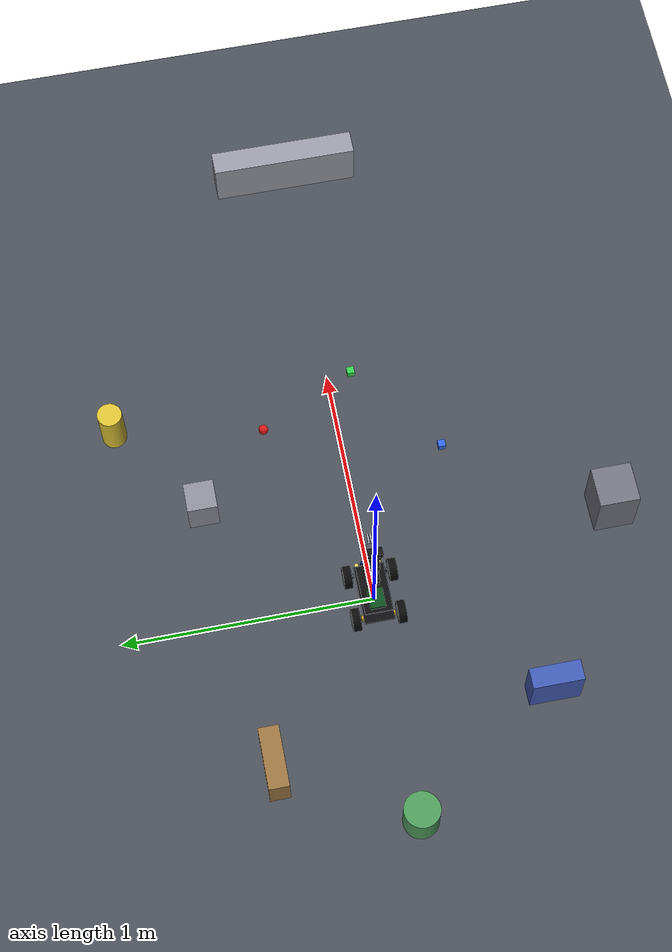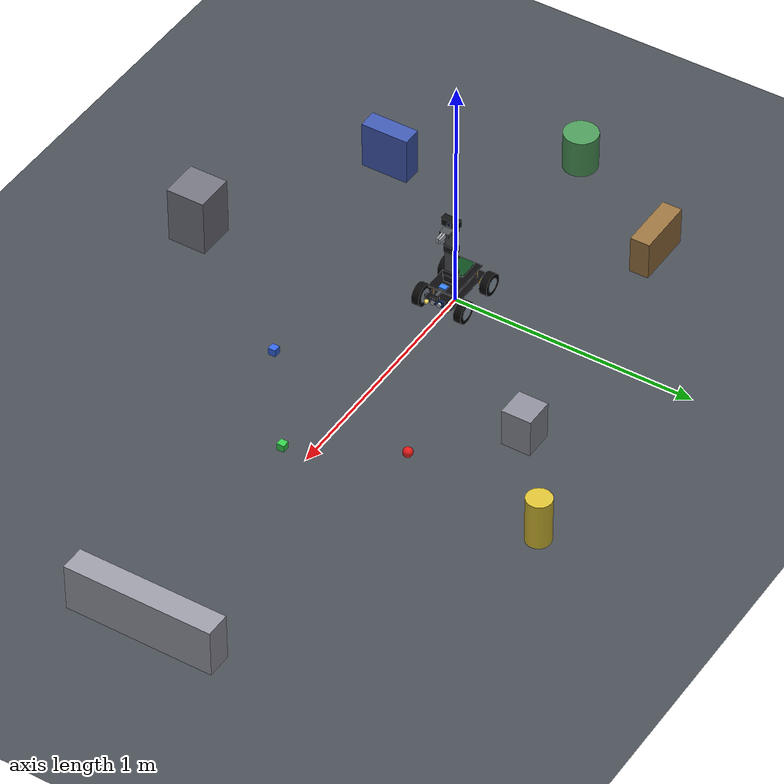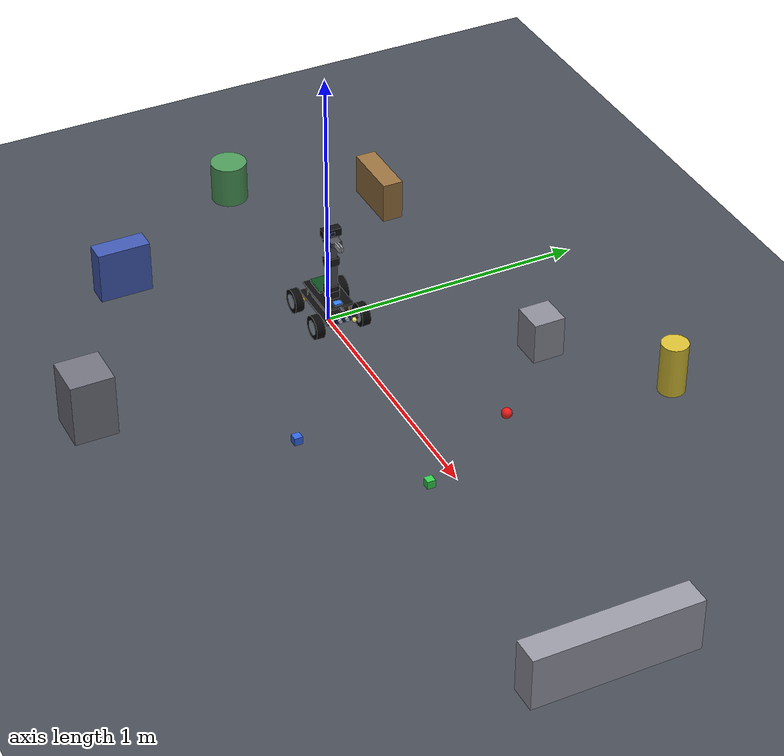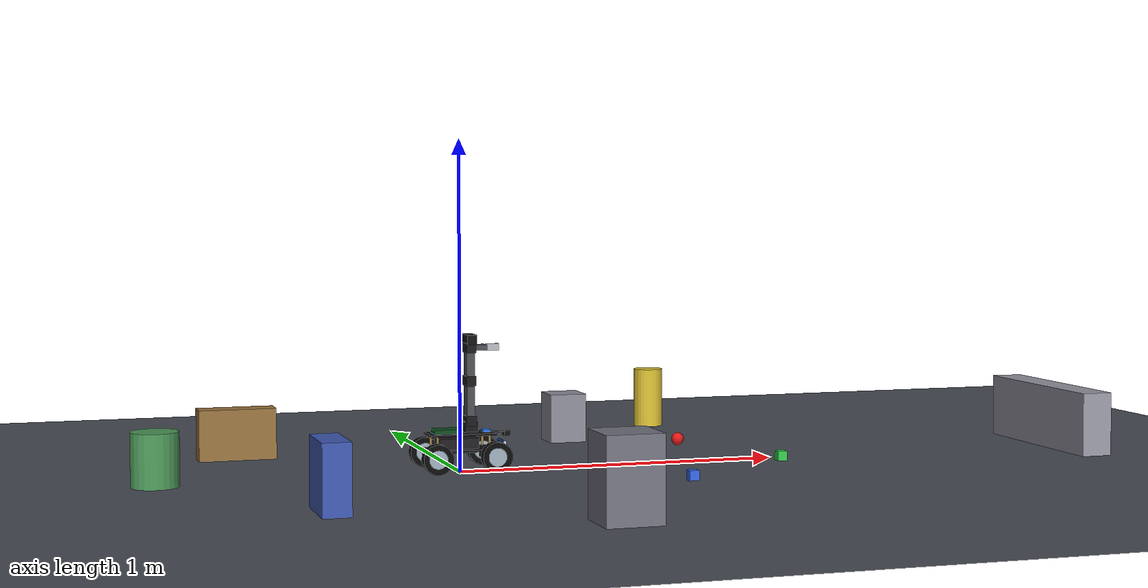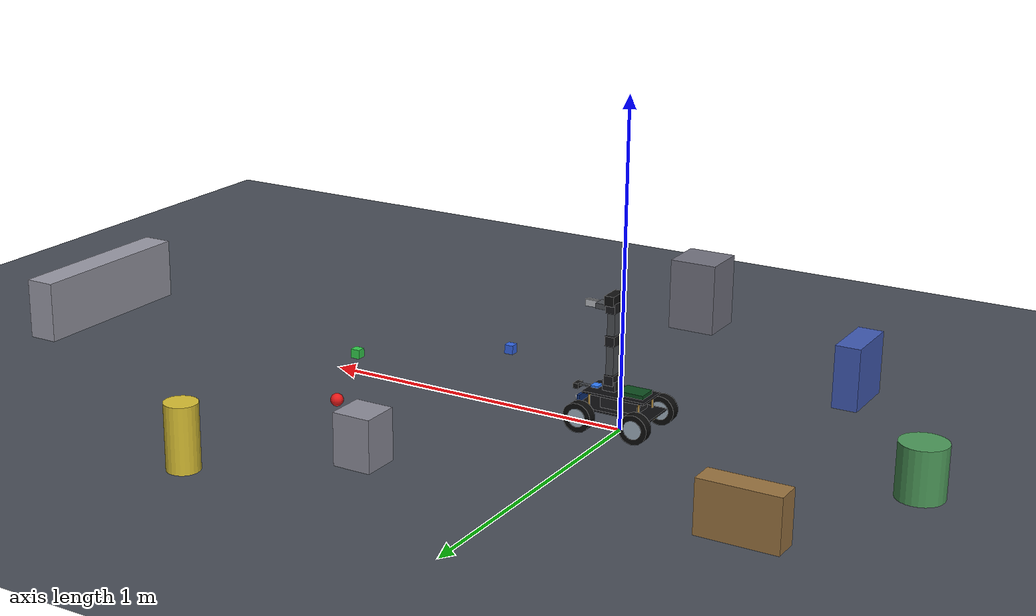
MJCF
<mujoco model="picar_pro">
  <!-- angle="radian": all angles (range, ctrlrange) are in radians. MJCF defaults to degrees! -->
  <compiler angle="radian"/>

  <option timestep="0.002" integrator="implicitfast" cone="elliptic" impratio="10" noslip_iterations="5"/>

  <!-- statistic: where the viewer's free camera looks.
       center = robot center, extent = scene "size" (smaller = camera starts closer) -->
  <statistic center="0 0 0.12" extent="0.35"/>

  <visual>
    <!-- global: initial camera angle (degrees) -->
    <global azimuth="150" elevation="-20"/>
    <!-- znear: lets the camera get very close without clipping (relative to extent) -->
    <map znear="0.005"/>
    <!-- headlight: light attached to the viewer camera. Higher ambient keeps shaded parts visible -->
    <headlight ambient="0.35 0.35 0.35" diffuse="0.6 0.6 0.6" specular="0.1 0.1 0.1"/>
  </visual>

  <asset>
    <texture name="sky" type="skybox" builtin="gradient" rgb1="0.4 0.6 0.8" rgb2="0.05 0.05 0.1" width="512" height="512"/>
    <texture name="grid" type="2d" builtin="checker" rgb1="0.25 0.27 0.3" rgb2="0.32 0.34 0.38" width="512" height="512"/>
    <material name="floor_mat" texture="grid" texrepeat="8 8" reflectance="0.1"/>
    <!-- emission: looks self-illuminated (headlights, screen) -->
    <material name="headlight_mat" rgba="1 0.9 0.4 1" emission="1"/>
    <material name="oled_mat" rgba="0.2 0.5 1 1" emission="0.6"/>
    <!-- Robot materials. specular = highlight strength, shininess = how sharp the highlight is.
         Black parts use different darkness and gloss so they stay distinguishable. -->
    <material name="acrylic" rgba="0.05 0.05 0.06 1" specular="0.8" shininess="0.9"/>        <!-- glossy black acrylic plate -->
    <material name="aluminum" rgba="0.3 0.31 0.33 1" specular="0.6" shininess="0.5"/>        <!-- dark gray metal (arm) -->
    <material name="servo" rgba="0.1 0.1 0.11 1" specular="0.2" shininess="0.2"/>          <!-- matte black servo -->
    <material name="plastic_black" rgba="0.07 0.07 0.07 1" specular="0.3" shininess="0.3"/>  <!-- camera housing -->
    <material name="rubber" rgba="0.04 0.04 0.04 1" specular="0" shininess="0"/>          <!-- rubber tire -->
    <material name="hub_metal" rgba="0.62 0.68 0.74 1" specular="0.7" shininess="0.6"/>     <!-- wheel hub -->
    <material name="steel" rgba="0.72 0.73 0.75 1" specular="0.9" shininess="0.8"/>        <!-- steel: fingers, sonar -->
    <material name="brass" rgba="0.7 0.55 0.25 1" specular="0.8" shininess="0.7"/>         <!-- brass standoffs -->
    <material name="pcb_green" rgba="0.05 0.3 0.12 1" specular="0.4" shininess="0.5"/>     <!-- Raspberry Pi board -->
    <material name="pcb_blue" rgba="0.05 0.18 0.45 1" specular="0.4" shininess="0.5"/>     <!-- sonar board -->
    <material name="battery" rgba="0.12 0.12 0.13 1" specular="0.1" shininess="0.1"/>       <!-- battery holder -->
    <material name="tt_motor" rgba="0.85 0.68 0.1 1" specular="0.3" shininess="0.3"/>      <!-- yellow TT motor -->
    <material name="lens" rgba="0.05 0.08 0.2 1" specular="1" shininess="1"/>             <!-- camera lens -->
  </asset>

  <!-- default: write shared properties once and reuse them through "class" -->
  <default>
    <!-- visual: appearance only. Collides with nothing (contype/conaffinity=0), weightless (density=0) -->
    <default class="visual">
      <geom contype="0" conaffinity="0" density="0"/>
    </default>
    <!-- wheel: tire. zaxis="0 1 0" turns the cylinder axis toward y -->
    <default class="wheel">
      <geom type="cylinder" size="0.045 0.016" zaxis="0 1 0" material="rubber"
            friction="1.5 0.005 0.0001" mass="0.05"/>
    </default>
    <!-- hub: metal wheel disc (visual only) -->
    <default class="hub">
      <geom type="cylinder" size="0.028 0.0165" zaxis="0 1 0" material="hub_metal"
            contype="0" conaffinity="0" density="0"/>
    </default>
    <!-- arm_link: arm segments (dark aluminum) -->
    <default class="arm_link">
      <geom type="box" material="aluminum" contype="0" conaffinity="0" mass="0.03"/>
      <joint type="hinge" armature="0.01" damping="0.2"/>
    </default>
  </default>

  <worldbody>
    <light pos="0 0 3" dir="0 0 -1" diffuse="0.8 0.8 0.8"/>
    <light pos="1 1 1.5" dir="-1 -1 -1" diffuse="0.4 0.4 0.4" castshadow="false"/>
    <geom name="floor" type="plane" size="3 3 0.1" material="floor_mat"/>

    <!-- ===================== ROBOT ===================== -->
    <!-- z=0.07: wheel radius 0.045 + wheels sit 0.015 below the chassis = 0.06, dropped from slightly above -->
    <body name="chassis" pos="0 0 0.07">
      <freejoint name="chassis_free"/>

      <!-- Lower plate (main body) -->
      <geom name="lower_plate" type="box" size="0.12 0.06 0.003" material="acrylic"/>
      <!-- 18650 battery holder (keeps the center of mass low) -->
      <geom name="battery_box" type="box" size="0.06 0.035 0.016" pos="-0.01 0 0.02" material="battery"/>
      <!-- 4 brass standoffs holding the two plates -->
      <geom class="visual" type="cylinder" size="0.003 0.022" pos="0.08 0.045 0.025" material="brass"/>
      <geom class="visual" type="cylinder" size="0.003 0.022" pos="0.08 -0.045 0.025" material="brass"/>
      <geom class="visual" type="cylinder" size="0.003 0.022" pos="-0.08 0.045 0.025" material="brass"/>
      <geom class="visual" type="cylinder" size="0.003 0.022" pos="-0.08 -0.045 0.025" material="brass"/>
      <!-- Upper plate -->
      <geom name="upper_plate" type="box" size="0.1 0.055 0.003" pos="0 0 0.048" material="acrylic"/>
      <!-- Raspberry Pi + Robot HAT -->
      <geom class="visual" type="box" size="0.04 0.03 0.006" pos="-0.045 0 0.057" material="pcb_green"/>
      <!-- OLED screen -->
      <geom class="visual" type="box" size="0.012 0.015 0.003" pos="0.08 0 0.054" material="oled_mat"/>
      <!-- Rear motors (yellow TT motors) -->
      <geom class="visual" type="cylinder" size="0.012 0.022" pos="-0.09 0.045 -0.015" zaxis="0 1 0" material="tt_motor"/>
      <geom class="visual" type="cylinder" size="0.012 0.022" pos="-0.09 -0.045 -0.015" zaxis="0 1 0" material="tt_motor"/>
      <!-- Steering servo -->
      <geom class="visual" type="box" size="0.02 0.01 0.012" pos="0.08 0 -0.012" material="servo"/>

      <!-- Front sonar (ultrasonic sensor): blue board + two transducers -->
      <geom class="visual" type="box" size="0.004 0.03 0.013" pos="0.124 0 0.012" material="pcb_blue"/>
      <geom class="visual" type="cylinder" size="0.008 0.006" pos="0.132 0.014 0.012" zaxis="1 0 0" material="steel"/>
      <geom class="visual" type="cylinder" size="0.008 0.006" pos="0.132 -0.014 0.012" zaxis="1 0 0" material="steel"/>
      <!-- site: invisible reference point. The rangefinder measures along its +z axis, hence zaxis="1 0 0" (forward).
           group="3": hidden from cameras (so it isn't mistaken for the green cube) -->
      <site name="sonar_site" pos="0.14 0 0.012" zaxis="1 0 0" size="0.004" rgba="0 1 0 1" group="3"/>
      <site name="sonar_left_15_site" pos="0.14 0.01 0.012" zaxis="0.966 0.259 0" size="0.004" group="3"/>
      <site name="sonar_left_30_site" pos="0.14 0.01 0.012" zaxis="0.866 0.5 0" size="0.004" group="3"/>
      <site name="sonar_right_15_site" pos="0.14 -0.01 0.012" zaxis="0.966 -0.259 0" size="0.004" group="3"/>
      <site name="sonar_right_30_site" pos="0.14 -0.01 0.012" zaxis="0.866 -0.5 0" size="0.004" group="3"/>
      <site name="corner_left_site" pos="0.13 0.115 0.012" zaxis="0.5 0.866 0" size="0.004" group="3"/>
      <site name="corner_right_site" pos="0.13 -0.115 0.012" zaxis="0.5 -0.866 0" size="0.004" group="3"/>
      <site name="side_left_site" pos="-0.06 0.115 0.012" zaxis="0 1 0" size="0.004" group="3"/>
      <site name="side_right_site" pos="-0.06 -0.115 0.012" zaxis="0 -1 0" size="0.004" group="3"/>

      <geom class="visual" type="box" size="0.022 0.006 0.002" pos="0.12 0 0.049" material="aluminum"/>
      <geom class="visual" type="box" size="0.008 0.015 0.008" pos="0.142 0 0.045" material="plastic_black"/>
      <geom class="visual" type="cylinder" size="0.006 0.002" pos="0.15 0 0.045" zaxis="1 0 0" material="lens"/>
      <camera name="front_cam" pos="0.153 0 0.045" xyaxes="0 -1 0 0.5 0 0.866" fovy="80"/>

      <geom class="visual" type="sphere" size="0.009" pos="0.126 0.045 -0.004" material="headlight_mat"/>
      <geom class="visual" type="sphere" size="0.009" pos="0.126 -0.045 -0.004" material="headlight_mat"/>

      <!-- Camera following the robot from behind (pick it in the viewer's "Camera" menu) -->
      <camera name="chase_cam" pos="-0.5 0 0.3" xyaxes="0 -1 0 0.5 0 1"/>
      <!-- Extra cameras that move with the robot -->
      <camera name="front_view" pos="0.5 0 0.2" xyaxes="0 1 0 -0.2 0 1"/>
      <camera name="left_view" pos="0 0.5 0.15" xyaxes="-1 0 0 0 -0.1 1"/>
      <camera name="top_view" pos="0 0 0.8" xyaxes="0 -1 0 1 0 0"/>
      <!-- targetbody: always looks at "forearm" (close-up of the arm) -->
      <camera name="arm_closeup" pos="0.25 0.25 0.3" mode="targetbody" target="forearm"/>

      <!-- ===== Front wheels: STEERED =====
           The knuckle rotates about z (steering),
           the wheel inside it rotates about y (rolling). -->
      <body name="front_left_knuckle" pos="0.09 0.09 -0.015">
        <joint name="front_left_steer" type="hinge" axis="0 0 1" range="-0.5 0.5" armature="0.005" damping="0.05"/>
        <geom class="visual" type="box" size="0.006 0.004 0.012" pos="0 -0.021 0" material="aluminum" mass="0.01"/>
        <body name="front_left_wheel">
          <joint name="front_left_wheel_joint" type="hinge" axis="0 1 0" damping="0.001"/>
          <geom class="wheel"/>
          <geom class="hub"/>
        </body>
      </body>
      <body name="front_right_knuckle" pos="0.09 -0.09 -0.015">
        <joint name="front_right_steer" type="hinge" axis="0 0 1" range="-0.5 0.5" armature="0.005" damping="0.05"/>
        <geom class="visual" type="box" size="0.006 0.004 0.012" pos="0 0.021 0" material="aluminum" mass="0.01"/>
        <body name="front_right_wheel">
          <joint name="front_right_wheel_joint" type="hinge" axis="0 1 0" damping="0.001"/>
          <geom class="wheel"/>
          <geom class="hub"/>
        </body>
      </body>

      <!-- ===== Rear wheels: DRIVEN by motors ===== -->
      <body name="rear_left_wheel" pos="-0.09 0.09 -0.015">
        <joint name="rear_left_wheel_joint" type="hinge" axis="0 1 0" armature="0.005" damping="0.001"/>
        <geom class="wheel"/>
        <geom class="hub"/>
      </body>
      <body name="rear_right_wheel" pos="-0.09 -0.09 -0.015">
        <joint name="rear_right_wheel_joint" type="hinge" axis="0 1 0" armature="0.005" damping="0.001"/>
        <geom class="wheel"/>
        <geom class="hub"/>
      </body>

      <!-- ===== 4-DOF ARM: yaw -> shoulder -> elbow -> wrist -> gripper ===== -->
      <body name="arm_base" pos="0.03 0 0.051" childclass="arm_link">
        <!-- DOF 1: the whole arm turns left/right about z -->
        <joint name="arm_yaw" axis="0 0 1" range="-1.57 1.57"/>
        <geom size="0.02 0.022 0.015" pos="0 0 0.017" material="servo"/>

        <body name="upper_arm" pos="0 0 0.035">
          <!-- DOF 2: shoulder, tilts forward/backward about y -->
          <joint name="shoulder" axis="0 1 0" range="-0.6 1.9"/>
          <!-- black cube = servo (shows where the joint is) -->
          <geom size="0.015 0.026 0.015" material="servo"/>
          <geom size="0.012 0.02 0.06" pos="0 0 0.06"/>

          <body name="forearm" pos="0 0 0.12">
            <!-- DOF 3: elbow -->
            <joint name="elbow" axis="0 1 0" range="-2.2 2.2"/>
            <geom size="0.015 0.026 0.015" material="servo"/>
            <geom size="0.012 0.018 0.05" pos="0 0 0.05" material="aluminum"/>

            <!-- Webcam on top of the arm (like the real kit) -->
            <geom size="0.015 0.035 0.015" pos="0 0 0.125" material="plastic_black"/>
            <geom type="cylinder" size="0.009 0.002" pos="0.016 0 0.125" zaxis="1 0 0" material="lens"/>
            <!-- Cameras look along their -z. xyaxes: image right = -y, image up tilted back,
                 so the camera looks forward and about 25° down -->
            <camera name="arm_camera" pos="0.02 0 0.125" xyaxes="0 -1 0 0.423 0 0.906" fovy="75"/>

            <body name="gripper" pos="0 0 0.1">
              <!-- DOF 4: wrist, tilts the gripper up/down -->
              <joint name="wrist" axis="0 1 0" range="-2 2"/>
              <geom size="0.015 0.026 0.015" material="servo"/>
              <!-- grip_site: point between the two fingers, where objects are held.
                   group="3": hidden from cameras (otherwise it is mistaken for the red apple) -->
              <site name="grip_site" pos="0.07 0 0" size="0.004" rgba="1 0 0 0.5" group="3"/>
              <geom name="palm" size="0.02 0.02 0.008" pos="0.03 0 0" material="aluminum" contype="1" conaffinity="1"/>
              <!-- Fingers open with slide (linear) joints. 0 = closed, 0.025 = open -->
              <body name="left_finger" pos="0.055 0.005 0">
                <joint name="left_finger_slide" type="slide" axis="0 1 0" range="0 0.025" damping="0.5"/>
                <geom size="0.02 0.003 0.01" pos="0.015 0 0" material="steel"
                      contype="1" conaffinity="1" mass="0.01" friction="2 0.01 0.001"/>
              </body>
              <body name="right_finger" pos="0.055 -0.005 0">
                <joint name="right_finger_slide" type="slide" axis="0 -1 0" range="0 0.025" damping="0.5"/>
                <geom size="0.02 0.003 0.01" pos="0.015 0 0" material="steel"
                      contype="1" conaffinity="1" mass="0.01" friction="2 0.01 0.001"/>
              </body>
            </body>
          </body>
        </body>
      </body>
    </body>

    <!-- ===================== WORLD ===================== -->
    <!-- Apple: a small sphere the arm can grasp -->
    <body name="apple" pos="0.8 0.3 0.03">
      <freejoint/>
      <!-- condim="6": enables rolling friction. Without it a sphere rolls forever, like a ball on ice.
           friction = sliding, torsional, rolling -->
      <geom type="sphere" size="0.02" rgba="0.9 0.1 0.1 1" mass="0.03" condim="6" friction="1.5 0.01 0.005"/>
    </body>
    <!-- Small cubes -->
    <body name="blue_cube" pos="0.6 -0.4 0.02">
      <freejoint/>
      <geom type="box" size="0.015 0.015 0.015" rgba="0.2 0.4 0.9 1" mass="0.02"/>
    </body>
    <body name="green_cube" pos="1.0 -0.1 0.02">
      <freejoint/>
      <geom type="box" size="0.015 0.015 0.015" rgba="0.2 0.8 0.3 1" mass="0.02"/>
    </body>
    <!-- Obstacle (for testing the sonar) -->
    <geom name="obstacle" type="box" size="0.05 0.3 0.1" pos="2 0 0.1" rgba="0.6 0.6 0.65 1"/>

    <geom name="block_1" type="box" size="0.06 0.06 0.08" pos="0.5 0.6 0.08" rgba="0.55 0.55 0.6 1"/>
    <geom name="block_2" type="box" size="0.12 0.04 0.08" pos="-0.6 0.5 0.08" rgba="0.6 0.45 0.25 1"/>
    <geom name="block_3" type="box" size="0.04 0.1 0.1" pos="-0.5 -0.6 0.1" rgba="0.25 0.35 0.7 1"/>
    <geom name="pillar_1" type="cylinder" size="0.05 0.1" pos="0.9 0.9 0.1" rgba="0.85 0.75 0.2 1"/>
    <geom name="pillar_2" type="cylinder" size="0.07 0.08" pos="-0.9 0 0.08" rgba="0.3 0.6 0.35 1"/>
    <geom name="block_4" type="box" size="0.08 0.08 0.12" pos="0.2 -1.0 0.12" rgba="0.45 0.45 0.5 1"/>
  </worldbody>

  <!-- Disable some collisions: a steered wheel must not catch on the chassis edge -->
  <contact>
    <exclude body1="chassis" body2="front_left_wheel"/>
    <exclude body1="chassis" body2="front_right_wheel"/>
  </contact>

  <!-- equality: couples two joints. joint1 = joint2 -->
  <equality>
    <!-- Right wheel steers together with the left one (like a single steering servo) -->
    <joint joint1="front_right_steer" joint2="front_left_steer"/>
    <!-- Right finger moves together with the left one (like a single gripper servo) -->
    <joint joint1="right_finger_slide" joint2="left_finger_slide"/>
  </equality>

  <!-- actuator: motors. These are the "Control" sliders in the viewer's right panel -->
  <actuator>
    <!-- velocity: holds a target angular speed (rad/s). 20 rad/s * 0.045 m = 0.9 m/s -->
    <velocity name="rear_left_motor" joint="rear_left_wheel_joint" kv="0.3" ctrlrange="-20 20" forcerange="-0.6 0.6"/>
    <velocity name="rear_right_motor" joint="rear_right_wheel_joint" kv="0.3" ctrlrange="-20 20" forcerange="-0.6 0.6"/>
    <!-- position: drives a joint to a target angle (like a servo) -->
    <position name="steering" joint="front_left_steer" kp="3" ctrlrange="-0.5 0.5" forcerange="-1 1"/>
    <!-- forcerange: servo torque limit (N·m). Real hobby servos give ~1 N·m, so the arm
         can't shove the whole car when it touches the floor -->
    <position name="arm_yaw" joint="arm_yaw" kp="5" ctrlrange="-1.57 1.57" forcerange="-1 1"/>
    <position name="shoulder" joint="shoulder" kp="15" ctrlrange="-0.6 1.9" forcerange="-1.5 1.5"/>
    <position name="elbow" joint="elbow" kp="10" ctrlrange="-2.2 2.2" forcerange="-1 1"/>
    <position name="wrist" joint="wrist" kp="5" ctrlrange="-2 2" forcerange="-0.5 0.5"/>
    <!-- gripper: larger kp = firmer squeeze. forcerange = maximum grip force (N) -->
    <position name="gripper" joint="left_finger_slide" kp="150" ctrlrange="0 0.025" forcerange="-3 3"/>
  </actuator>

  <!-- sensor: measurements, read in Python through data.sensor(...) -->
  <sensor>
    <rangefinder name="sonar" site="sonar_site" cutoff="2"/>
    <rangefinder name="sonar_left_15" site="sonar_left_15_site" cutoff="2"/>
    <rangefinder name="sonar_left_30" site="sonar_left_30_site" cutoff="2"/>
    <rangefinder name="sonar_right_15" site="sonar_right_15_site" cutoff="2"/>
    <rangefinder name="sonar_right_30" site="sonar_right_30_site" cutoff="2"/>
    <rangefinder name="corner_left" site="corner_left_site" cutoff="2"/>
    <rangefinder name="corner_right" site="corner_right_site" cutoff="2"/>
    <rangefinder name="side_left" site="side_left_site" cutoff="2"/>
    <rangefinder name="side_right" site="side_right_site" cutoff="2"/>
    <jointpos name="steering_angle" joint="front_left_steer"/>
    <jointvel name="rear_left_speed" joint="rear_left_wheel_joint"/>
    <framepos name="chassis_pos" objtype="body" objname="chassis"/>
  </sensor>
</mujoco>
